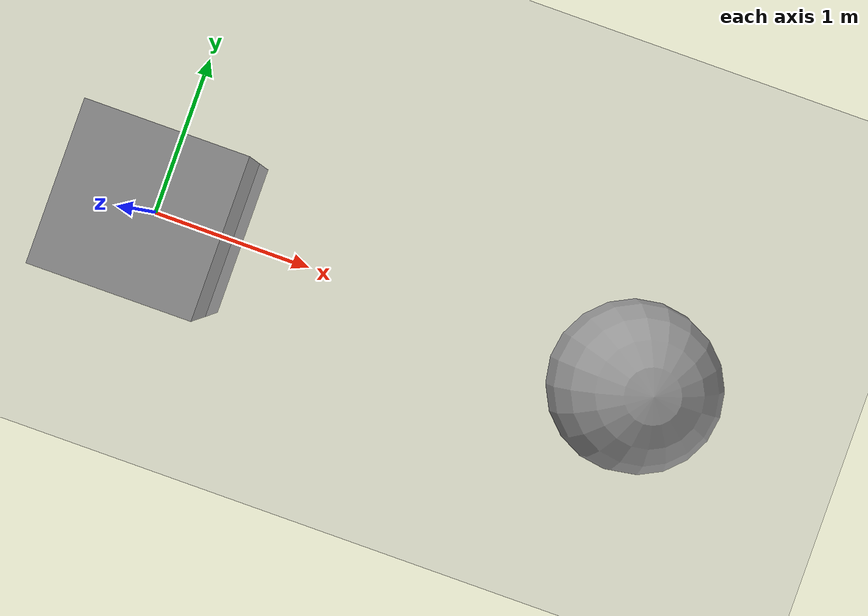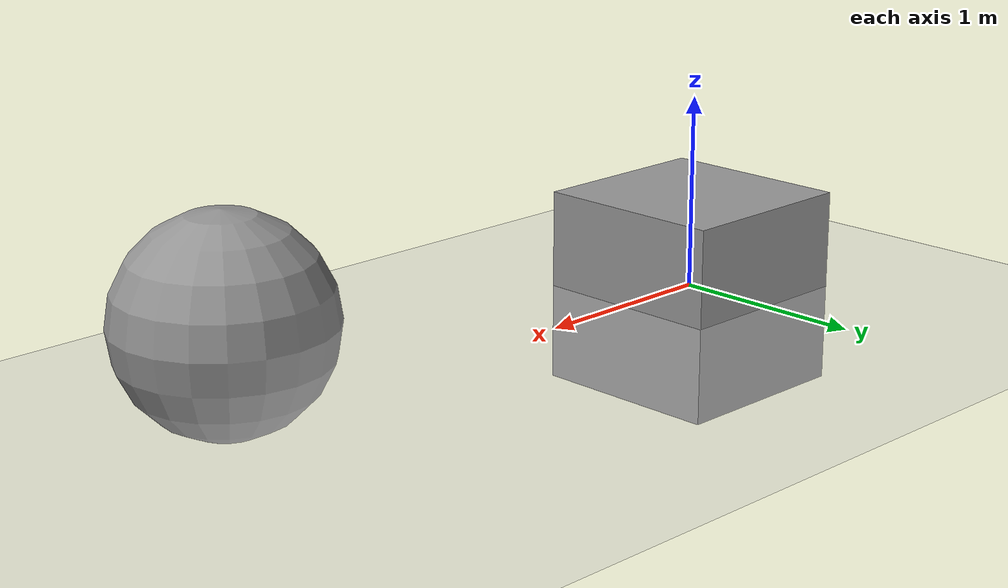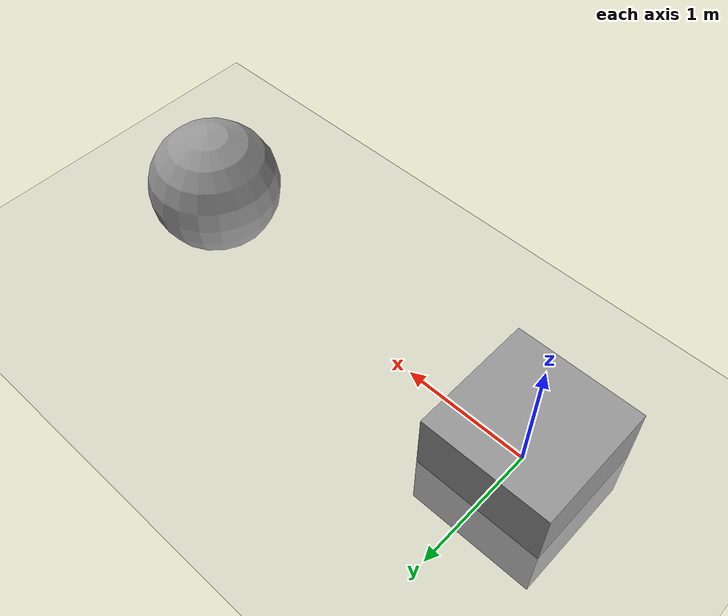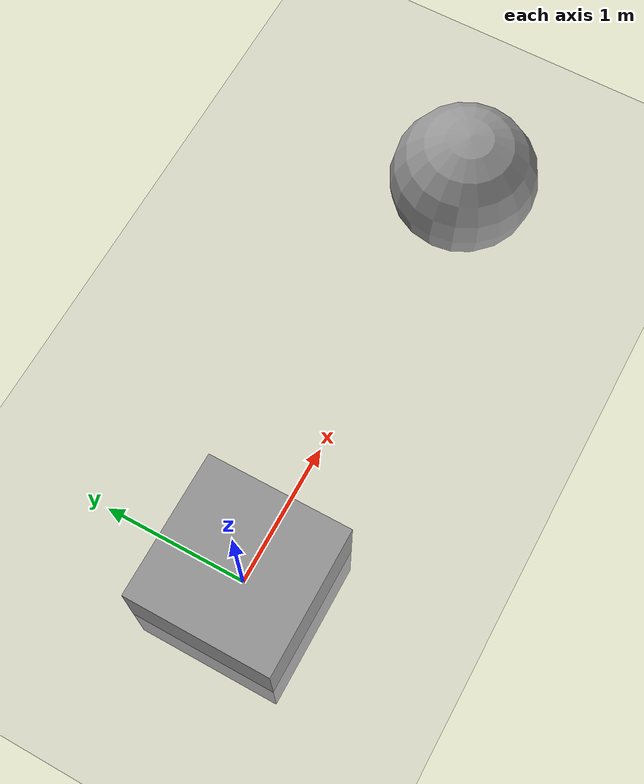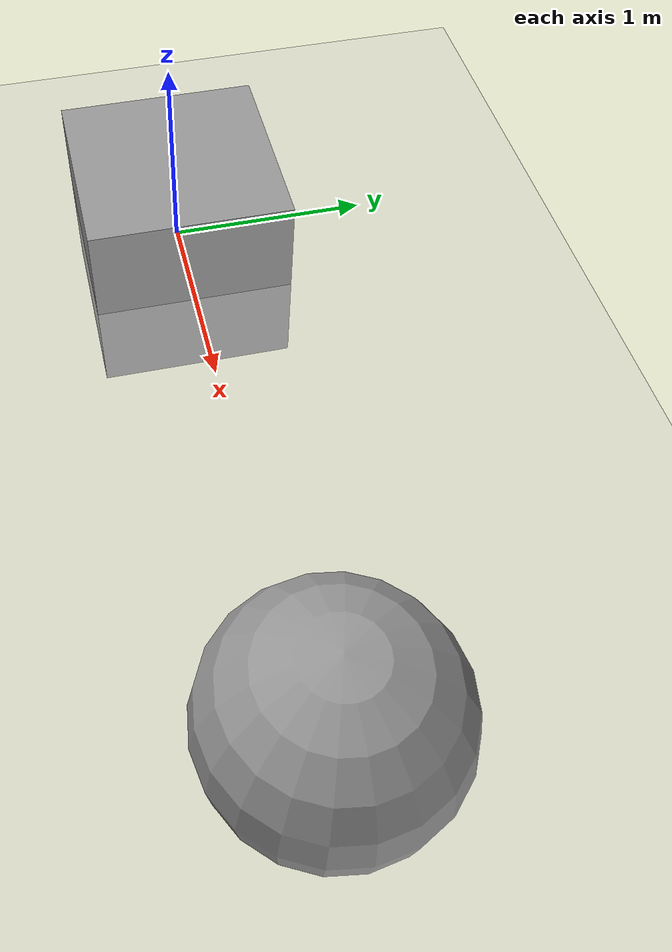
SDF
<?xml version="1.0" ?>
<sdf version="1.6">
  <world name="default">

    <scene><sky/></scene>

    <!-- A ground plane -->
    <include>
      <uri>model://ground_plane</uri>
    </include>

    <model name="ground_plane">
      <static>true</static>
      <link name="link">
        <collision name="collision">
          <geometry>
            <plane>
              <normal>0 0 1</normal>
              <size>100 100</size>
            </plane>
          </geometry>
          <surface>
            <contact>
               <collide_bitmask>0xffff</collide_bitmask>
            </contact>
            <friction>
              <ode>
                <mu>100</mu>
                <mu2>50</mu2>
              </ode>
            </friction>
          </surface>
        </collision>
        <visual name="visual">
          <cast_shadows>false</cast_shadows>
          <geometry>
            <plane>
              <normal>0 0 1</normal>
              <size>100 100</size>
            </plane>
          </geometry>
          <material>
            <script>
              <uri>file://media/materials/scripts/citysim.material</uri>
              <name>CitySim/ShinyGrey</name>
            </script>
          </material>
        </visual>
      </link>
    </model>

    <!-- A global light source -->
    <light type="directional" name="sun">
      <cast_shadows>true</cast_shadows>
      <pose>0 0 10 0 0 0</pose>
      <diffuse>0.8 0.8 0.8 1</diffuse>
      <specular>0.6 0.6 0.6 1</specular>
      <attenuation>
        <range>1000</range>
        <constant>0.9</constant>
        <linear>0.01</linear>
        <quadratic>0.001</quadratic>
      </attenuation>
      <direction>0.5 0.5 -0.3</direction>
    </light>

    <model name="box">
      <link name="link">
        <collision name="collision">
          <geometry>
            <box>
              <size>1 1 1</size>
            </box>
          </geometry>
        </collision>
        <visual name="visual">
          <geometry>
            <box>
              <size>1 1 1</size>
            </box>
          </geometry>
          <material>
            <script>
              <uri>file://media/materials/scripts/citysim.material</uri>
              <name>CitySim/ShinyGrey</name>
            </script>
          </material>
          <plugin name="bloom" filename="libBloomVisualPlugin.so" />
          <plugin name="lensflare" filename="libLensFlareVisualPlugin.so" />
        </visual>
      </link>
    </model>

    <model name="sphere">
      <pose>3 0 0.5 0 0 0</pose>
      <link name="link">
        <collision name="collision">
          <geometry>
            <sphere>
              <radius>0.5</radius>
            </sphere>
          </geometry>
        </collision>
        <visual name="visual">
          <geometry>
            <sphere>
              <radius>0.5</radius>
            </sphere>
          </geometry>
          <material>
            <script>
              <uri>file://media/materials/scripts/citysim.material</uri>
              <name>CitySim/ShinyGrey</name>
            </script>
          </material>
        </visual>
      </link>
    </model>

  </world>
</sdf>
